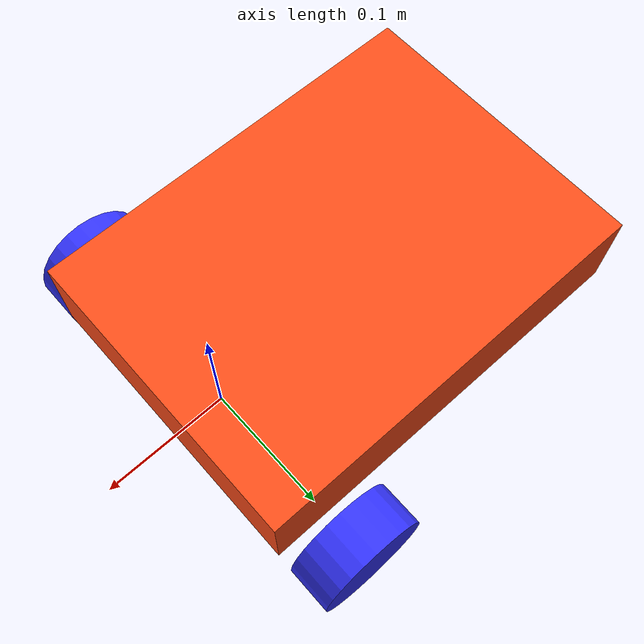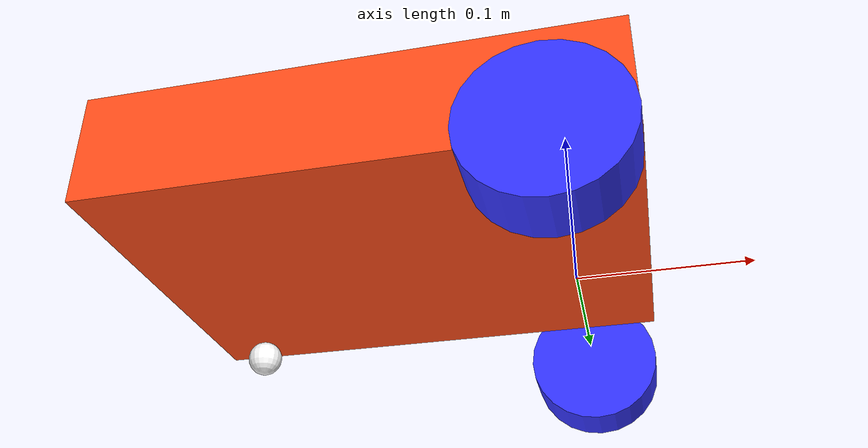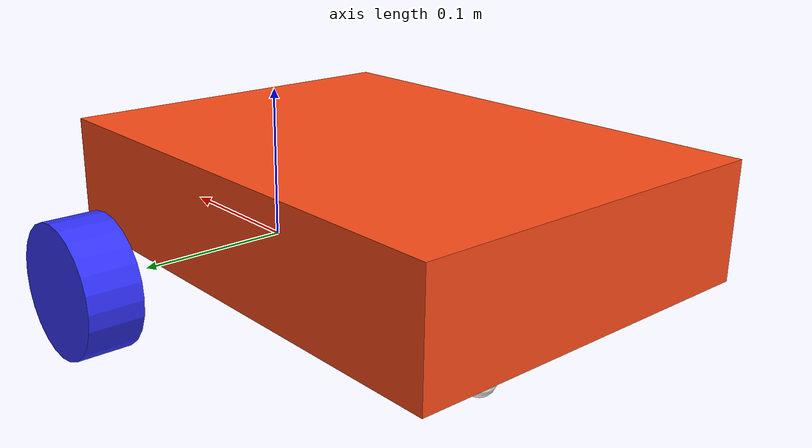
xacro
<?xml version="1.0"?>
<robot xmlns:xacro="http://www.ros.org/wiki/xacro" >

    <xacro:include filename="inertial_macros.xacro"/>

    <xacro:property name="chassis_length" value="0.31"/>
    <xacro:property name="chassis_width" value="0.23"/>
    <xacro:property name="chassis_height" value="0.07"/>
    <xacro:property name="chassis_mass" value="1.0"/>
    <xacro:property name="wheel_radius" value="0.0425"/>
    <xacro:property name="wheel_thickness" value="0.035"/>
    <xacro:property name="wheel_mass" value="0.05"/>
    <xacro:property name="wheel_offset_x" value="0.266"/>
    <xacro:property name="wheel_offset_y" value="0.142"/>
    <xacro:property name="wheel_offset_z" value="-0.02"/>
    <xacro:property name="caster_wheel_radius" value="0.01"/>
    <xacro:property name="caster_wheel_mass" value="0.01"/>
    <xacro:property name="caster_wheel_offset_x" value="0.075"/>
    <xacro:property name="caster_wheel_offset_z" value="${wheel_offset_z - wheel_radius + caster_wheel_radius}"/>

    <material name="white">
        <color rgba="1 1 1 1" />
    </material>

    <material name="orange">
        <color rgba="1 0.3 0.1 1"/>
    </material>

    <material name="blue">
        <color rgba="0.2 0.2 1 1"/>
    </material>

    <material name="black">
        <color rgba="0 0 0 1"/>
    </material>

    <material name="red">
        <color rgba="1 0 0 1"/>
    </material>

    <!-- BASE LINK -->

    <link name="base_link">

    </link>

    <!-- BASE_FOOTPRINT LINK -->

    <joint name="base_footprint_joint" type="fixed">
        <parent link="base_link"/>
        <child link="base_footprint"/>
        <origin xyz="0 0 0" rpy="0 0 0"/>
    </joint>

    <link name="base_footprint">
    </link>

    <!-- CHASSIS LINK -->

    <joint name="chassis_joint" type="fixed">
        <parent link="base_link"/>
        <child link="chassis"/>
        <origin xyz="${-wheel_offset_x} 0 ${-wheel_offset_z}"/>
    </joint>

    <link name="chassis">
        <visual>
            <origin xyz="${chassis_length/2} 0 ${chassis_height/2}"/>
            <geometry>
                <box size="${chassis_length} ${chassis_width} ${chassis_height}"/>
            </geometry>
            <material name="orange"/>
        </visual>
        <collision>
            <origin xyz="${chassis_length/2} 0 ${chassis_height/2}"/>
            <geometry>
                <box size="${chassis_length} ${chassis_width} ${chassis_height}"/>
            </geometry>
        </collision>
        <xacro:inertial_box mass="0.5" x="${chassis_length}" y="${chassis_width}" z="${chassis_height}">
            <origin xyz="${chassis_length/2} 0 ${chassis_height/2}" rpy="0 0 0"/>
        </xacro:inertial_box>
    </link>

    <gazebo reference="chassis">
        <material>Gazebo/Orange</material>
    </gazebo>

    <!-- LEFT WHEEL LINK -->

    <joint name="left_wheel_joint" type="continuous">
        <parent link="base_link"/>
        <child link="left_wheel"/>
        <origin xyz="0 ${wheel_offset_y} 0" rpy="-${pi/2} 0 0" />
        <axis xyz="0 0 1"/>
    </joint>

    <link name="left_wheel">
        <visual>
            <geometry>
                <cylinder radius="${wheel_radius}" length="${wheel_thickness}"/>
            </geometry>
            <material name="blue"/>
        </visual>
        <collision>
            <geometry>
                <sphere radius="${wheel_radius}"/>
            </geometry>
        </collision>
        <xacro:inertial_cylinder mass="${wheel_mass}" length="${wheel_thickness}" radius="${wheel_radius}">
            <origin xyz="0 0 0" rpy="0 0 0"/>
        </xacro:inertial_cylinder>
    </link>

    <gazebo reference="left_wheel">
        <material>Gazebo/Blue</material>
    </gazebo>

    <!-- RIGHT WHEEL LINK -->

    <joint name="right_wheel_joint" type="continuous">
        <parent link="base_link"/>
        <child link="right_wheel"/>
        <origin xyz="0 ${-wheel_offset_y} 0" rpy="${pi/2} 0 0" />
        <axis xyz="0 0 -1"/>
    </joint>

    <link name="right_wheel">
        <visual>
            <geometry>
                <cylinder radius="${wheel_radius}" length="${wheel_thickness}"/>
            </geometry>
            <material name="blue"/>
        </visual>
        <collision>
            <geometry>
                <sphere radius="${wheel_radius}"/>
            </geometry>
        </collision>
        <xacro:inertial_cylinder mass="${wheel_mass}" length="${wheel_thickness}" radius="${wheel_radius}">
            <origin xyz="0 0 0" rpy="0 0 0"/>
        </xacro:inertial_cylinder>
    </link>

    <gazebo reference="right_wheel">
        <material>Gazebo/Blue</material>
    </gazebo>

    <!-- CASTER WHEEL LINK -->

    <joint name="caster_wheel_joint" type="fixed">
        <parent link="chassis"/>
        <child link="caster_wheel"/>
        <origin xyz="${caster_wheel_offset_x} 0 ${caster_wheel_offset_z}"/>
    </joint>

    <link name="caster_wheel">
        <visual>
            <geometry>
                <sphere radius="${caster_wheel_radius}"/>
            </geometry>
            <material name="white"/>
        </visual>
        <collision>
            <geometry>
                <sphere radius="${caster_wheel_radius}"/>
            </geometry>
        </collision>
        <xacro:inertial_sphere mass="${caster_wheel_mass}" radius="${caster_wheel_radius}">
            <origin xyz="0 0 0" rpy="0 0 0"/>
        </xacro:inertial_sphere>
    </link>

    <gazebo reference="caster_wheel">
        <material>Gazebo/White</material>
        <mu1 value="0.001"/>
        <mu2 value="0.001"/>
    </gazebo>

</robot>

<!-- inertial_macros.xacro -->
<robot xmlns:xacro="http://www.ros.org/wiki/xacro" >

    <!-- Specify some standard inertial calculations https://en.wikipedia.org/wiki/List_of_moments_of_inertia -->
    <!-- These make use of xacro's mathematical functionality -->

    <xacro:macro name="inertial_sphere" params="mass radius *origin">
        <inertial>
            <xacro:insert_block name="origin"/>
            <mass value="${mass}" />
            <inertia ixx="${(2/5) * mass * (radius*radius)}" ixy="0.0" ixz="0.0"
                    iyy="${(2/5) * mass * (radius*radius)}" iyz="0.0"
                    izz="${(2/5) * mass * (radius*radius)}" />
        </inertial>
    </xacro:macro>

    <xacro:macro name="inertial_box" params="mass x y z *origin">
        <inertial>
            <xacro:insert_block name="origin"/>
            <mass value="${mass}" />
            <inertia ixx="${(1/12) * mass * (y*y+z*z)}" ixy="0.0" ixz="0.0"
                    iyy="${(1/12) * mass * (x*x+z*z)}" iyz="0.0"
                    izz="${(1/12) * mass * (x*x+y*y)}" />
        </inertial>
    </xacro:macro>

    <xacro:macro name="inertial_cylinder" params="mass length radius *origin">
        <inertial>
            <xacro:insert_block name="origin"/>
            <mass value="${mass}" />
            <inertia ixx="${(1/12) * mass * (3*radius*radius + length*length)}" ixy="0.0" ixz="0.0"
                    iyy="${(1/12) * mass * (3*radius*radius + length*length)}" iyz="0.0"
                    izz="${(1/2) * mass * (radius*radius)}" />
        </inertial>
    </xacro:macro>

    <xacro:macro name="box_inertia" params="m l w h xyz rpy">
        <inertial>
            <origin xyz="${xyz}" rpy="${rpy}" />
            <mass value="${m}" />
            <inertia ixx="${(m/12) * (h*h + l*l)}" ixy="0" ixz="0"
                     iyy="${(m/12) * (w*w + l*l)}" iyz="0"
                     izz="${(m/12) * (w*w + h*h)}" />
        </inertial>
    </xacro:macro>

    <xacro:macro name="cylinder_inertia" params="m r h xyz rpy">
        <inertial>
            <origin xyz="${xyz}" rpy="${rpy}" />
            <mass value="${m}" />
            <inertia ixx="${(m/12) * (3*r*r + h*h)}" ixy="0" ixz="0"
                     iyy="${(m/12) * (3*r*r + h*h)}" iyz="0"
                     izz="${(m/2) * (r*r)}" />
        </inertial>
    </xacro:macro>

    <xacro:macro name="sphere_inertia" params="m r xyz rpy">
        <inertial>
            <origin xyz="${xyz}" rpy="${rpy}" />
            <mass value="${m}" />
            <inertia ixx="${(2/5) * m * r * r}" ixy="0" ixz="0"
                     iyy="${(2/5) * m * r * r}" iyz="0"
                     izz="${(2/5) * m * r * r}" />
        </inertial>
    </xacro:macro>
</robot>
